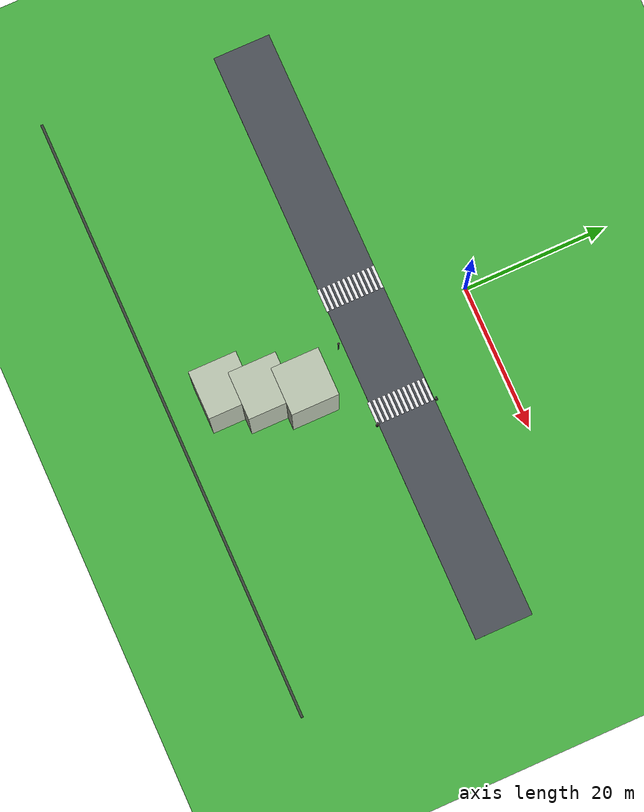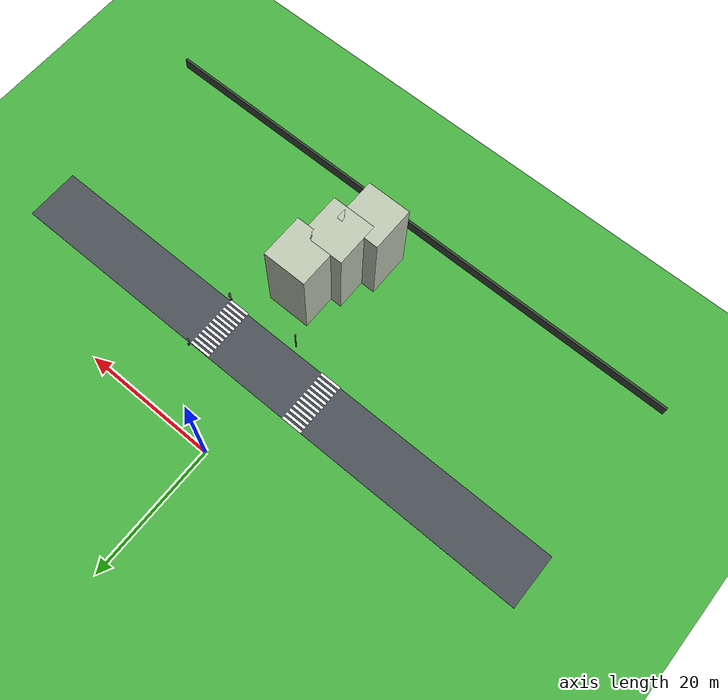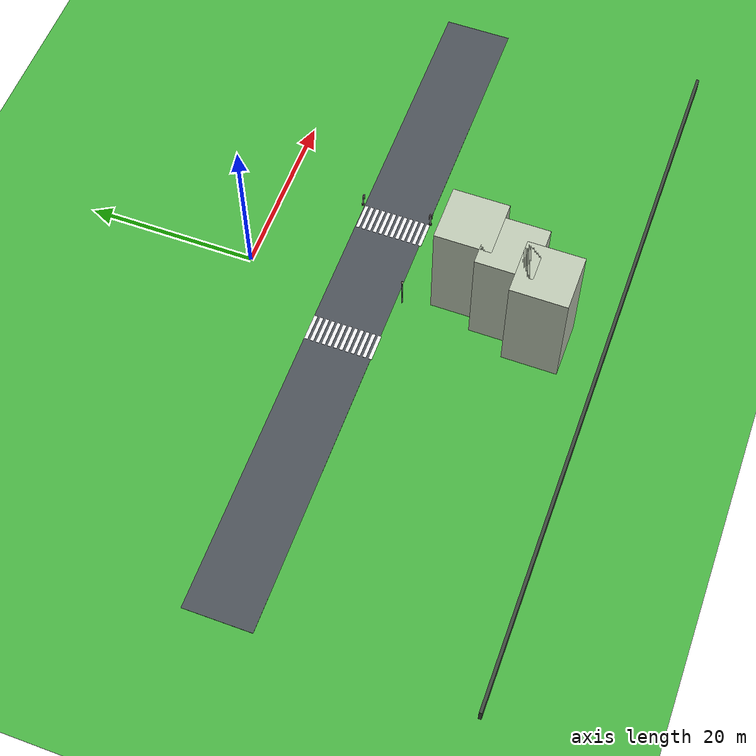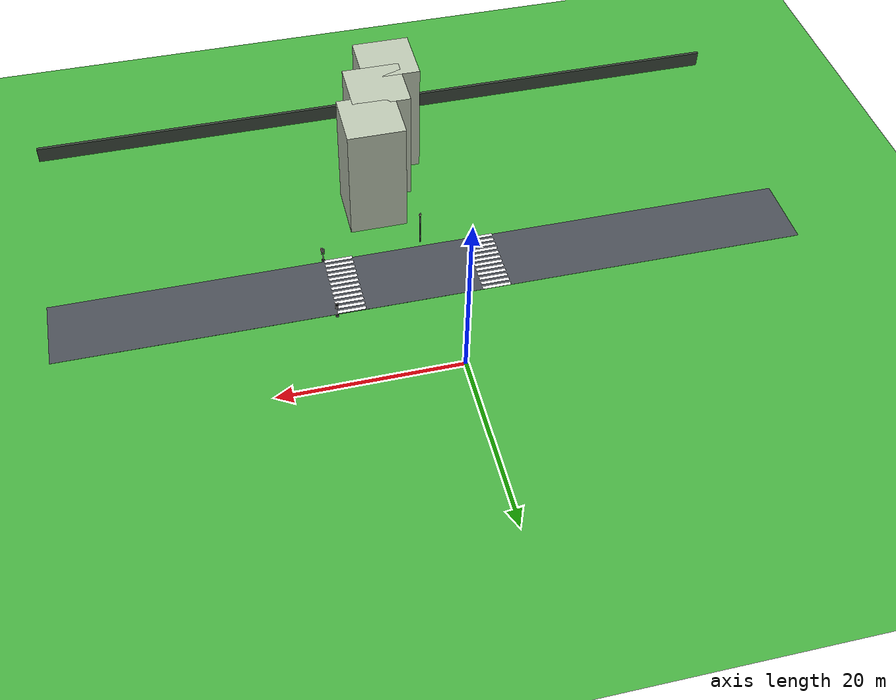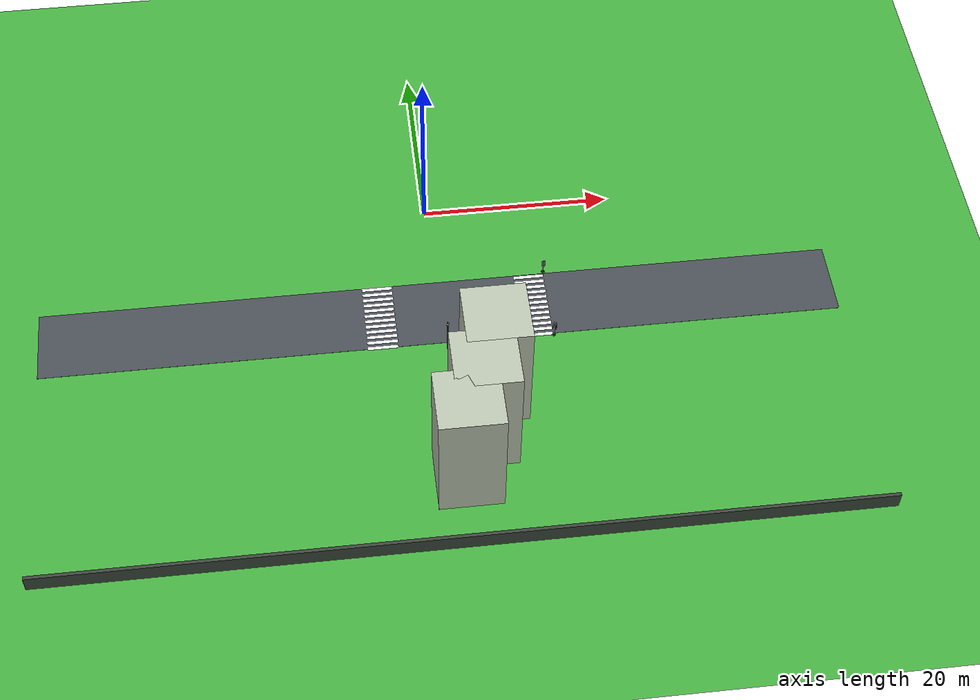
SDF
<sdf version="1.10">
 <world name="city_second">
  <model name="ground_plane">
   <static>true</static>
   <link name="link">
    <collision name="collision">
     <geometry><plane><normal>0 0 1</normal><size>300 300</size></plane></geometry>
    </collision>
    <visual name="visual">
     <geometry><plane><normal>0 0 1</normal><size>300 300</size></plane></geometry>
     <material>
      <ambient>0.280000001 0.689999998 0.25999999 1</ambient>
      <diffuse>0.280000001 0.689999998 0.25999999 1</diffuse>
      <specular>0.0299999993 0.0299999993 0.0299999993 1</specular>
     </material>
    </visual>
    <inertial>
     <mass>1</mass>
     <inertia><ixx>1</ixx><ixy>0</ixy><ixz>0</ixz><iyy>1</iyy><iyz>0</iyz><izz>1</izz></inertia>
    </inertial>
   </link>
  </model>
  <model name="house_1_2">
   <static>true</static>
   <pose>4.5999999999999996 -24.800000000000001 7 0 0 0</pose>
   <link name="link">
    <collision name="collision"><geometry><box><size>6.5 6.5 14</size></box></geometry></collision>
    <visual name="visual">
     <geometry><box><size>6.5 6.5 14</size></box></geometry>
     <material>
      <ambient>0.730000019 0.769999981 0.689999998 1</ambient>
      <diffuse>0.730000019 0.769999981 0.689999998 1</diffuse>
      <specular>0.0299999993 0.0299999993 0.0299999993 1</specular>
     </material>
    </visual>
    <inertial>
     <mass>1</mass>
     <inertia><ixx>1</ixx><ixy>0</ixy><ixz>0</ixz><iyy>1</iyy><iyz>0</iyz><izz>1</izz></inertia>
    </inertial>
   </link>
  </model>
  <model name="fence_south">
   <static>true</static>
   <pose>0 -42 0.94999999999999996 0 0 0</pose>
   <link name="link">
    <collision name="collision">
     <geometry><box><size>84.5 0.34999999999999998 1.8999999999999999</size></box></geometry>
    </collision>
    <visual name="visual">
     <geometry><box><size>84.5 0.34999999999999998 1.8999999999999999</size></box></geometry>
     <material>
      <ambient>0.230000004 0.270000011 0.230000004 1</ambient>
      <diffuse>0.230000004 0.270000011 0.230000004 1</diffuse>
      <specular>0.0299999993 0.0299999993 0.0299999993 1</specular>
     </material>
    </visual>
    <inertial>
     <mass>1</mass>
     <inertia><ixx>1</ixx><ixy>0</ixy><ixz>0</ixz><iyy>1</iyy><iyz>0</iyz><izz>1</izz></inertia>
    </inertial>
   </link>
  </model>
  <model name="house_1_2_1">
   <static>true</static>
   <pose>2.9261599999999999 -29.924299999999999 7 0 0 0</pose>
   <link name="link">
    <collision name="collision"><geometry><box><size>6.5 6.5 14</size></box></geometry></collision>
    <visual name="visual">
     <geometry><box><size>6.5 6.5 14</size></box></geometry>
     <material>
      <ambient>0.730000019 0.769999981 0.689999998 1</ambient>
      <diffuse>0.730000019 0.769999981 0.689999998 1</diffuse>
      <specular>0.0299999993 0.0299999993 0.0299999993 1</specular>
     </material>
    </visual>
    <inertial>
     <mass>1</mass>
     <inertia><ixx>1</ixx><ixy>0</ixy><ixz>0</ixz><iyy>1</iyy><iyz>0</iyz><izz>1</izz></inertia>
    </inertial>
   </link>
  </model>
  <model name="house_1_2_2">
   <static>true</static>
   <pose>0.84303399999999995 -34.430599999999998 7 0 0 0</pose>
   <link name="link">
    <collision name="collision"><geometry><box><size>6.5 6.5 14</size></box></geometry></collision>
    <visual name="visual">
     <geometry><box><size>6.5 6.5 14</size></box></geometry>
     <material>
      <ambient>0.730000019 0.769999981 0.689999998 1</ambient>
      <diffuse>0.730000019 0.769999981 0.689999998 1</diffuse>
      <specular>0.0299999993 0.0299999993 0.0299999993 1</specular>
     </material>
    </visual>
    <inertial>
     <mass>1</mass>
     <inertia><ixx>1</ixx><ixy>0</ixy><ixz>0</ixz><iyy>1</iyy><iyz>0</iyz><izz>1</izz></inertia>
    </inertial>
   </link>
  </model>
  <model name="crosswalk_v_2_1_east_5_3">
   <static>true</static>
   <pose>10.1084 -13.8094 0.017000000000000001 0 0 0</pose>
   <link name="stripe_1">
    <collision name="collision">
     <geometry><box><size>3.2000000000000002 0.41999999999999998 0.01</size></box></geometry>
    </collision>
    <visual name="visual">
     <geometry><box><size>3.2000000000000002 0.41999999999999998 0.01</size></box></geometry>
     <material>
      <ambient>0.920000017 0.920000017 0.930000007 1</ambient>
      <diffuse>0.920000017 0.920000017 0.930000007 1</diffuse>
      <specular>0.0299999993 0.0299999993 0.0299999993 1</specular>
     </material>
    </visual>
    <pose>0 -3.8500000000000001 0 0 0 0</pose>
    <inertial>
     <mass>1</mass>
     <inertia><ixx>1</ixx><ixy>0</ixy><ixz>0</ixz><iyy>1</iyy><iyz>0</iyz><izz>1</izz></inertia>
    </inertial>
   </link>
   <link name="stripe_2">
    <collision name="collision">
     <geometry><box><size>3.2000000000000002 0.41999999999999998 0.01</size></box></geometry>
    </collision>
    <visual name="visual">
     <geometry><box><size>3.2000000000000002 0.41999999999999998 0.01</size></box></geometry>
     <material>
      <ambient>0.920000017 0.920000017 0.930000007 1</ambient>
      <diffuse>0.920000017 0.920000017 0.930000007 1</diffuse>
      <specular>0.0299999993 0.0299999993 0.0299999993 1</specular>
     </material>
    </visual>
    <pose>0 -3.1499999999999999 0 0 0 0</pose>
    <inertial>
     <mass>1</mass>
     <inertia><ixx>1</ixx><ixy>0</ixy><ixz>0</ixz><iyy>1</iyy><iyz>0</iyz><izz>1</izz></inertia>
    </inertial>
   </link>
   <link name="stripe_3">
    <collision name="collision">
     <geometry><box><size>3.2000000000000002 0.41999999999999998 0.01</size></box></geometry>
    </collision>
    <visual name="visual">
     <geometry><box><size>3.2000000000000002 0.41999999999999998 0.01</size></box></geometry>
     <material>
      <ambient>0.920000017 0.920000017 0.930000007 1</ambient>
      <diffuse>0.920000017 0.920000017 0.930000007 1</diffuse>
      <specular>0.0299999993 0.0299999993 0.0299999993 1</specular>
     </material>
    </visual>
    <pose>0 -2.4500000000000002 0 0 0 0</pose>
    <inertial>
     <mass>1</mass>
     <inertia><ixx>1</ixx><ixy>0</ixy><ixz>0</ixz><iyy>1</iyy><iyz>0</iyz><izz>1</izz></inertia>
    </inertial>
   </link>
   <link name="stripe_4">
    <collision name="collision">
     <geometry><box><size>3.2000000000000002 0.41999999999999998 0.01</size></box></geometry>
    </collision>
    <visual name="visual">
     <geometry><box><size>3.2000000000000002 0.41999999999999998 0.01</size></box></geometry>
     <material>
      <ambient>0.920000017 0.920000017 0.930000007 1</ambient>
      <diffuse>0.920000017 0.920000017 0.930000007 1</diffuse>
      <specular>0.0299999993 0.0299999993 0.0299999993 1</specular>
     </material>
    </visual>
    <pose>0 -1.75 0 0 0 0</pose>
    <inertial>
     <mass>1</mass>
     <inertia><ixx>1</ixx><ixy>0</ixy><ixz>0</ixz><iyy>1</iyy><iyz>0</iyz><izz>1</izz></inertia>
    </inertial>
   </link>
   <link name="stripe_5">
    <collision name="collision">
     <geometry><box><size>3.2000000000000002 0.41999999999999998 0.01</size></box></geometry>
    </collision>
    <visual name="visual">
     <geometry><box><size>3.2000000000000002 0.41999999999999998 0.01</size></box></geometry>
     <material>
      <ambient>0.920000017 0.920000017 0.930000007 1</ambient>
      <diffuse>0.920000017 0.920000017 0.930000007 1</diffuse>
      <specular>0.0299999993 0.0299999993 0.0299999993 1</specular>
     </material>
    </visual>
    <pose>0 -1.05 0 0 0 0</pose>
    <inertial>
     <mass>1</mass>
     <inertia><ixx>1</ixx><ixy>0</ixy><ixz>0</ixz><iyy>1</iyy><iyz>0</iyz><izz>1</izz></inertia>
    </inertial>
   </link>
   <link name="stripe_6">
    <collision name="collision">
     <geometry><box><size>3.2000000000000002 0.41999999999999998 0.01</size></box></geometry>
    </collision>
    <visual name="visual">
     <geometry><box><size>3.2000000000000002 0.41999999999999998 0.01</size></box></geometry>
     <material>
      <ambient>0.920000017 0.920000017 0.930000007 1</ambient>
      <diffuse>0.920000017 0.920000017 0.930000007 1</diffuse>
      <specular>0.0299999993 0.0299999993 0.0299999993 1</specular>
     </material>
    </visual>
    <pose>0 -0.34999999999999998 0 0 0 0</pose>
    <inertial>
     <mass>1</mass>
     <inertia><ixx>1</ixx><ixy>0</ixy><ixz>0</ixz><iyy>1</iyy><iyz>0</iyz><izz>1</izz></inertia>
    </inertial>
   </link>
   <link name="stripe_7">
    <collision name="collision">
     <geometry><box><size>3.2000000000000002 0.41999999999999998 0.01</size></box></geometry>
    </collision>
    <visual name="visual">
     <geometry><box><size>3.2000000000000002 0.41999999999999998 0.01</size></box></geometry>
     <material>
      <ambient>0.920000017 0.920000017 0.930000007 1</ambient>
      <diffuse>0.920000017 0.920000017 0.930000007 1</diffuse>
      <specular>0.0299999993 0.0299999993 0.0299999993 1</specular>
     </material>
    </visual>
    <pose>0 0.34999999999999998 0 0 0 0</pose>
    <inertial>
     <mass>1</mass>
     <inertia><ixx>1</ixx><ixy>0</ixy><ixz>0</ixz><iyy>1</iyy><iyz>0</iyz><izz>1</izz></inertia>
    </inertial>
   </link>
   <link name="stripe_8">
    <collision name="collision">
     <geometry><box><size>3.2000000000000002 0.41999999999999998 0.01</size></box></geometry>
    </collision>
    <visual name="visual">
     <geometry><box><size>3.2000000000000002 0.41999999999999998 0.01</size></box></geometry>
     <material>
      <ambient>0.920000017 0.920000017 0.930000007 1</ambient>
      <diffuse>0.920000017 0.920000017 0.930000007 1</diffuse>
      <specular>0.0299999993 0.0299999993 0.0299999993 1</specular>
     </material>
    </visual>
    <pose>0 1.05 0 0 0 0</pose>
    <inertial>
     <mass>1</mass>
     <inertia><ixx>1</ixx><ixy>0</ixy><ixz>0</ixz><iyy>1</iyy><iyz>0</iyz><izz>1</izz></inertia>
    </inertial>
   </link>
   <link name="stripe_9">
    <collision name="collision">
     <geometry><box><size>3.2000000000000002 0.41999999999999998 0.01</size></box></geometry>
    </collision>
    <visual name="visual">
     <geometry><box><size>3.2000000000000002 0.41999999999999998 0.01</size></box></geometry>
     <material>
      <ambient>0.920000017 0.920000017 0.930000007 1</ambient>
      <diffuse>0.920000017 0.920000017 0.930000007 1</diffuse>
      <specular>0.0299999993 0.0299999993 0.0299999993 1</specular>
     </material>
    </visual>
    <pose>0 1.75 0 0 0 0</pose>
    <inertial>
     <mass>1</mass>
     <inertia><ixx>1</ixx><ixy>0</ixy><ixz>0</ixz><iyy>1</iyy><iyz>0</iyz><izz>1</izz></inertia>
    </inertial>
   </link>
   <link name="stripe_10">
    <collision name="collision">
     <geometry><box><size>3.2000000000000002 0.41999999999999998 0.01</size></box></geometry>
    </collision>
    <visual name="visual">
     <geometry><box><size>3.2000000000000002 0.41999999999999998 0.01</size></box></geometry>
     <material>
      <ambient>0.920000017 0.920000017 0.930000007 1</ambient>
      <diffuse>0.920000017 0.920000017 0.930000007 1</diffuse>
      <specular>0.0299999993 0.0299999993 0.0299999993 1</specular>
     </material>
    </visual>
    <pose>0 2.4500000000000002 0 0 0 0</pose>
    <inertial>
     <mass>1</mass>
     <inertia><ixx>1</ixx><ixy>0</ixy><ixz>0</ixz><iyy>1</iyy><iyz>0</iyz><izz>1</izz></inertia>
    </inertial>
   </link>
   <link name="stripe_11">
    <collision name="collision">
     <geometry><box><size>3.2000000000000002 0.41999999999999998 0.01</size></box></geometry>
    </collision>
    <visual name="visual">
     <geometry><box><size>3.2000000000000002 0.41999999999999998 0.01</size></box></geometry>
     <material>
      <ambient>0.920000017 0.920000017 0.930000007 1</ambient>
      <diffuse>0.920000017 0.920000017 0.930000007 1</diffuse>
      <specular>0.0299999993 0.0299999993 0.0299999993 1</specular>
     </material>
    </visual>
    <pose>0 3.1499999999999999 0 0 0 0</pose>
    <inertial>
     <mass>1</mass>
     <inertia><ixx>1</ixx><ixy>0</ixy><ixz>0</ixz><iyy>1</iyy><iyz>0</iyz><izz>1</izz></inertia>
    </inertial>
   </link>
   <link name="stripe_12">
    <collision name="collision">
     <geometry><box><size>3.2000000000000002 0.41999999999999998 0.01</size></box></geometry>
    </collision>
    <visual name="visual">
     <geometry><box><size>3.2000000000000002 0.41999999999999998 0.01</size></box></geometry>
     <material>
      <ambient>0.920000017 0.920000017 0.930000007 1</ambient>
      <diffuse>0.920000017 0.920000017 0.930000007 1</diffuse>
      <specular>0.0299999993 0.0299999993 0.0299999993 1</specular>
     </material>
    </visual>
    <pose>0 3.8500000000000001 0 0 0 0</pose>
    <inertial>
     <mass>1</mass>
     <inertia><ixx>1</ixx><ixy>0</ixy><ixz>0</ixz><iyy>1</iyy><iyz>0</iyz><izz>1</izz></inertia>
    </inertial>
   </link>
  </model>
  <model name="crosswalk_v_2_1_east_5_5">
   <static>true</static>
   <pose>-6.1313199999999997 -13.727399999999999 0.017000000000000001 0 0 0</pose>
   <link name="stripe_1">
    <collision name="collision">
     <geometry><box><size>3.2000000000000002 0.41999999999999998 0.01</size></box></geometry>
    </collision>
    <visual name="visual">
     <geometry><box><size>3.2000000000000002 0.41999999999999998 0.01</size></box></geometry>
     <material>
      <ambient>0.920000017 0.920000017 0.930000007 1</ambient>
      <diffuse>0.920000017 0.920000017 0.930000007 1</diffuse>
      <specular>0.0299999993 0.0299999993 0.0299999993 1</specular>
     </material>
    </visual>
    <pose>0 -3.8500000000000001 0 0 0 0</pose>
    <inertial>
     <mass>1</mass>
     <inertia><ixx>1</ixx><ixy>0</ixy><ixz>0</ixz><iyy>1</iyy><iyz>0</iyz><izz>1</izz></inertia>
    </inertial>
   </link>
   <link name="stripe_2">
    <collision name="collision">
     <geometry><box><size>3.2000000000000002 0.41999999999999998 0.01</size></box></geometry>
    </collision>
    <visual name="visual">
     <geometry><box><size>3.2000000000000002 0.41999999999999998 0.01</size></box></geometry>
     <material>
      <ambient>0.920000017 0.920000017 0.930000007 1</ambient>
      <diffuse>0.920000017 0.920000017 0.930000007 1</diffuse>
      <specular>0.0299999993 0.0299999993 0.0299999993 1</specular>
     </material>
    </visual>
    <pose>0 -3.1499999999999999 0 0 0 0</pose>
    <inertial>
     <mass>1</mass>
     <inertia><ixx>1</ixx><ixy>0</ixy><ixz>0</ixz><iyy>1</iyy><iyz>0</iyz><izz>1</izz></inertia>
    </inertial>
   </link>
   <link name="stripe_3">
    <collision name="collision">
     <geometry><box><size>3.2000000000000002 0.41999999999999998 0.01</size></box></geometry>
    </collision>
    <visual name="visual">
     <geometry><box><size>3.2000000000000002 0.41999999999999998 0.01</size></box></geometry>
     <material>
      <ambient>0.920000017 0.920000017 0.930000007 1</ambient>
      <diffuse>0.920000017 0.920000017 0.930000007 1</diffuse>
      <specular>0.0299999993 0.0299999993 0.0299999993 1</specular>
     </material>
    </visual>
    <pose>0 -2.4500000000000002 0 0 0 0</pose>
    <inertial>
     <mass>1</mass>
     <inertia><ixx>1</ixx><ixy>0</ixy><ixz>0</ixz><iyy>1</iyy><iyz>0</iyz><izz>1</izz></inertia>
    </inertial>
   </link>
   <link name="stripe_4">
    <collision name="collision">
     <geometry><box><size>3.2000000000000002 0.41999999999999998 0.01</size></box></geometry>
    </collision>
    <visual name="visual">
     <geometry><box><size>3.2000000000000002 0.41999999999999998 0.01</size></box></geometry>
     <material>
      <ambient>0.920000017 0.920000017 0.930000007 1</ambient>
      <diffuse>0.920000017 0.920000017 0.930000007 1</diffuse>
      <specular>0.0299999993 0.0299999993 0.0299999993 1</specular>
     </material>
    </visual>
    <pose>0 -1.75 0 0 0 0</pose>
    <inertial>
     <mass>1</mass>
     <inertia><ixx>1</ixx><ixy>0</ixy><ixz>0</ixz><iyy>1</iyy><iyz>0</iyz><izz>1</izz></inertia>
    </inertial>
   </link>
   <link name="stripe_5">
    <collision name="collision">
     <geometry><box><size>3.2000000000000002 0.41999999999999998 0.01</size></box></geometry>
    </collision>
    <visual name="visual">
     <geometry><box><size>3.2000000000000002 0.41999999999999998 0.01</size></box></geometry>
     <material>
      <ambient>0.920000017 0.920000017 0.930000007 1</ambient>
      <diffuse>0.920000017 0.920000017 0.930000007 1</diffuse>
      <specular>0.0299999993 0.0299999993 0.0299999993 1</specular>
     </material>
    </visual>
    <pose>0 -1.05 0 0 0 0</pose>
    <inertial>
     <mass>1</mass>
     <inertia><ixx>1</ixx><ixy>0</ixy><ixz>0</ixz><iyy>1</iyy><iyz>0</iyz><izz>1</izz></inertia>
    </inertial>
   </link>
   <link name="stripe_6">
    <collision name="collision">
     <geometry><box><size>3.2000000000000002 0.41999999999999998 0.01</size></box></geometry>
    </collision>
    <visual name="visual">
     <geometry><box><size>3.2000000000000002 0.41999999999999998 0.01</size></box></geometry>
     <material>
      <ambient>0.920000017 0.920000017 0.930000007 1</ambient>
      <diffuse>0.920000017 0.920000017 0.930000007 1</diffuse>
      <specular>0.0299999993 0.0299999993 0.0299999993 1</specular>
     </material>
    </visual>
    <pose>0 -0.34999999999999998 0 0 0 0</pose>
    <inertial>
     <mass>1</mass>
     <inertia><ixx>1</ixx><ixy>0</ixy><ixz>0</ixz><iyy>1</iyy><iyz>0</iyz><izz>1</izz></inertia>
    </inertial>
   </link>
   <link name="stripe_7">
    <collision name="collision">
     <geometry><box><size>3.2000000000000002 0.41999999999999998 0.01</size></box></geometry>
    </collision>
    <visual name="visual">
     <geometry><box><size>3.2000000000000002 0.41999999999999998 0.01</size></box></geometry>
     <material>
      <ambient>0.920000017 0.920000017 0.930000007 1</ambient>
      <diffuse>0.920000017 0.920000017 0.930000007 1</diffuse>
      <specular>0.0299999993 0.0299999993 0.0299999993 1</specular>
     </material>
    </visual>
    <pose>0 0.34999999999999998 0 0 0 0</pose>
    <inertial>
     <mass>1</mass>
     <inertia><ixx>1</ixx><ixy>0</ixy><ixz>0</ixz><iyy>1</iyy><iyz>0</iyz><izz>1</izz></inertia>
    </inertial>
   </link>
   <link name="stripe_8">
    <collision name="collision">
     <geometry><box><size>3.2000000000000002 0.41999999999999998 0.01</size></box></geometry>
    </collision>
    <visual name="visual">
     <geometry><box><size>3.2000000000000002 0.41999999999999998 0.01</size></box></geometry>
     <material>
      <ambient>0.920000017 0.920000017 0.930000007 1</ambient>
      <diffuse>0.920000017 0.920000017 0.930000007 1</diffuse>
      <specular>0.0299999993 0.0299999993 0.0299999993 1</specular>
     </material>
    </visual>
    <pose>0 1.05 0 0 0 0</pose>
    <inertial>
     <mass>1</mass>
     <inertia><ixx>1</ixx><ixy>0</ixy><ixz>0</ixz><iyy>1</iyy><iyz>0</iyz><izz>1</izz></inertia>
    </inertial>
   </link>
   <link name="stripe_9">
    <collision name="collision">
     <geometry><box><size>3.2000000000000002 0.41999999999999998 0.01</size></box></geometry>
    </collision>
    <visual name="visual">
     <geometry><box><size>3.2000000000000002 0.41999999999999998 0.01</size></box></geometry>
     <material>
      <ambient>0.920000017 0.920000017 0.930000007 1</ambient>
      <diffuse>0.920000017 0.920000017 0.930000007 1</diffuse>
      <specular>0.0299999993 0.0299999993 0.0299999993 1</specular>
     </material>
    </visual>
    <pose>0 1.75 0 0 0 0</pose>
    <inertial>
     <mass>1</mass>
     <inertia><ixx>1</ixx><ixy>0</ixy><ixz>0</ixz><iyy>1</iyy><iyz>0</iyz><izz>1</izz></inertia>
    </inertial>
   </link>
   <link name="stripe_10">
    <collision name="collision">
     <geometry><box><size>3.2000000000000002 0.41999999999999998 0.01</size></box></geometry>
    </collision>
    <visual name="visual">
     <geometry><box><size>3.2000000000000002 0.41999999999999998 0.01</size></box></geometry>
     <material>
      <ambient>0.920000017 0.920000017 0.930000007 1</ambient>
      <diffuse>0.920000017 0.920000017 0.930000007 1</diffuse>
      <specular>0.0299999993 0.0299999993 0.0299999993 1</specular>
     </material>
    </visual>
    <pose>0 2.4500000000000002 0 0 0 0</pose>
    <inertial>
     <mass>1</mass>
     <inertia><ixx>1</ixx><ixy>0</ixy><ixz>0</ixz><iyy>1</iyy><iyz>0</iyz><izz>1</izz></inertia>
    </inertial>
   </link>
   <link name="stripe_11">
    <collision name="collision">
     <geometry><box><size>3.2000000000000002 0.41999999999999998 0.01</size></box></geometry>
    </collision>
    <visual name="visual">
     <geometry><box><size>3.2000000000000002 0.41999999999999998 0.01</size></box></geometry>
     <material>
      <ambient>0.920000017 0.920000017 0.930000007 1</ambient>
      <diffuse>0.920000017 0.920000017 0.930000007 1</diffuse>
      <specular>0.0299999993 0.0299999993 0.0299999993 1</specular>
     </material>
    </visual>
    <pose>0 3.1499999999999999 0 0 0 0</pose>
    <inertial>
     <mass>1</mass>
     <inertia><ixx>1</ixx><ixy>0</ixy><ixz>0</ixz><iyy>1</iyy><iyz>0</iyz><izz>1</izz></inertia>
    </inertial>
   </link>
   <link name="stripe_12">
    <collision name="collision">
     <geometry><box><size>3.2000000000000002 0.41999999999999998 0.01</size></box></geometry>
    </collision>
    <visual name="visual">
     <geometry><box><size>3.2000000000000002 0.41999999999999998 0.01</size></box></geometry>
     <material>
      <ambient>0.920000017 0.920000017 0.930000007 1</ambient>
      <diffuse>0.920000017 0.920000017 0.930000007 1</diffuse>
      <specular>0.0299999993 0.0299999993 0.0299999993 1</specular>
     </material>
    </visual>
    <pose>0 3.8500000000000001 0 0 0 0</pose>
    <inertial>
     <mass>1</mass>
     <inertia><ixx>1</ixx><ixy>0</ixy><ixz>0</ixz><iyy>1</iyy><iyz>0</iyz><izz>1</izz></inertia>
    </inertial>
   </link>
  </model>
  <model name="road_h_2_1">
   <static>true</static>
   <pose>0.20479900000000001 -13.667999999999999 0.01 0 0 0</pose>
   <link name="link">
    <collision name="collision"><geometry><box><size>84 8 0.02</size></box></geometry></collision>
    <visual name="visual">
     <geometry><box><size>84 8 0.02</size></box></geometry>
     <material>
      <ambient>0.289999992 0.310000002 0.340000004 1</ambient>
      <diffuse>0.289999992 0.310000002 0.340000004 1</diffuse>
      <specular>0.0299999993 0.0299999993 0.0299999993 1</specular>
     </material>
    </visual>
    <inertial>
     <mass>1</mass>
     <inertia><ixx>1</ixx><ixy>0</ixy><ixz>0</ixz><iyy>1</iyy><iyz>0</iyz><izz>1</izz></inertia>
    </inertial>
   </link>
  </model>
  <model name="lamp_1_2_5">
   <static>true</static>
   <pose>0.52294700000000005 -18.399799999999999 2.2000000000000002 0 0 0</pose>
   <link name="link">
    <collision name="collision">
     <geometry>
      <cylinder><radius>0.080000000000000002</radius><length>4.4000000000000004</length></cylinder>
     </geometry>
    </collision>
    <visual name="pole">
     <geometry>
      <cylinder><radius>0.080000000000000002</radius><length>4.4000000000000004</length></cylinder>
     </geometry>
     <material>
      <ambient>0.349999994 0.360000014 0.379999995 1</ambient>
      <diffuse>0.349999994 0.360000014 0.379999995 1</diffuse>
      <specular>0.0299999993 0.0299999993 0.0299999993 1</specular>
     </material>
    </visual>
    <visual name="lamp_head">
     <pose>0 0 2 0 0 0</pose>
     <geometry><sphere><radius>0.14000000000000001</radius></sphere></geometry>
     <material>
      <ambient>0.959999979 0.939999998 0.779999971 1</ambient>
      <diffuse>0.959999979 0.939999998 0.779999971 1</diffuse>
      <specular>0.0299999993 0.0299999993 0.0299999993 1</specular>
     </material>
    </visual>
    <inertial>
     <mass>1</mass>
     <inertia><ixx>1</ixx><ixy>0</ixy><ixz>0</ixz><iyy>1</iyy><iyz>0</iyz><izz>1</izz></inertia>
    </inertial>
   </link>
  </model>
  <model name="simple_traffic_light_red_east_3">
   <static>true</static>
   <pose>11.772916838391152 -17.894358570880065 -6.9388939039072284e-18 0 0 -1.5707999672671704</pose>
   <link name="base">
    <pose>0 0 0.040000000000000001 0 0 0</pose>
    <collision name="collision">
     <geometry>
      <cylinder><radius>0.17999999999999999</radius><length>0.080000000000000002</length></cylinder>
     </geometry>
    </collision>
    <visual name="visual">
     <geometry>
      <cylinder><radius>0.17999999999999999</radius><length>0.080000000000000002</length></cylinder>
     </geometry>
     <material>
      <ambient>0.0799999982 0.0799999982 0.0799999982 1</ambient>
      <diffuse>0.0799999982 0.0799999982 0.0799999982 1</diffuse>
      <specular>0.150000006 0.150000006 0.150000006 1</specular>
      <emissive>0 0 0 1</emissive>
     </material>
    </visual>
    <inertial>
     <mass>1</mass>
     <inertia><ixx>1</ixx><ixy>0</ixy><ixz>0</ixz><iyy>1</iyy><iyz>0</iyz><izz>1</izz></inertia>
    </inertial>
   </link>
   <link name="pole">
    <pose>-7.1054273576010019e-15 7.1054273576010019e-15 0.80000000000000004 0 0 0</pose>
    <collision name="collision">
     <geometry>
      <cylinder><radius>0.044999999999999998</radius><length>1.6000000000000001</length></cylinder>
     </geometry>
    </collision>
    <visual name="visual">
     <geometry>
      <cylinder><radius>0.044999999999999998</radius><length>1.6000000000000001</length></cylinder>
     </geometry>
     <material>
      <ambient>0.0799999982 0.0799999982 0.0799999982 1</ambient>
      <diffuse>0.0799999982 0.0799999982 0.0799999982 1</diffuse>
      <specular>0.150000006 0.150000006 0.150000006 1</specular>
      <emissive>0 0 0 1</emissive>
     </material>
    </visual>
    <inertial>
     <mass>1</mass>
     <inertia><ixx>1</ixx><ixy>0</ixy><ixz>0</ixz><iyy>1</iyy><iyz>0</iyz><izz>1</izz></inertia>
    </inertial>
   </link>
   <link name="signal_box">
    <pose>7.1054273576010019e-15 0.090000000000003411 1.5500000000000003 0 0 0</pose>
    <collision name="collision">
     <geometry><box><size>0.34000000000000002 0.16 0.71999999999999997</size></box></geometry>
    </collision>
    <visual name="visual">
     <geometry><box><size>0.34000000000000002 0.16 0.71999999999999997</size></box></geometry>
     <material>
      <ambient>0.0199999996 0.0199999996 0.0199999996 1</ambient>
      <diffuse>0.0199999996 0.0199999996 0.0199999996 1</diffuse>
      <specular>0.150000006 0.150000006 0.150000006 1</specular>
      <emissive>0 0 0 1</emissive>
     </material>
    </visual>
    <inertial>
     <mass>1</mass>
     <inertia><ixx>1</ixx><ixy>0</ixy><ixz>0</ixz><iyy>1</iyy><iyz>0</iyz><izz>1</izz></inertia>
    </inertial>
   </link>
   <link name="red_lens">
    <pose>-7.1054273576010019e-15 0.18100000000000449 1.78 1.5707963267999998 -8.0126081257495458e-28 3.1401849173675498e-16</pose>
    <collision name="collision">
     <geometry><cylinder><radius>0.105</radius><length>0.035000000000000003</length></cylinder></geometry>
    </collision>
    <visual name="visual">
     <geometry><cylinder><radius>0.105</radius><length>0.035000000000000003</length></cylinder></geometry>
     <material>
      <ambient>1 0.0199999996 0.0199999996 1</ambient>
      <diffuse>1 0.0199999996 0.0199999996 1</diffuse>
      <specular>0.150000006 0.150000006 0.150000006 1</specular>
      <emissive>1 0.0199999996 0.0199999996 1</emissive>
     </material>
    </visual>
    <inertial>
     <mass>1</mass>
     <inertia><ixx>1</ixx><ixy>0</ixy><ixz>0</ixz><iyy>1</iyy><iyz>0</iyz><izz>1</izz></inertia>
    </inertial>
   </link>
   <link name="yellow_lens">
    <pose>-7.1054273576010019e-15 0.18200000000000216 1.5500000000000003 1.5707963267999998 -8.0126081257495458e-28 3.1401849173675498e-16</pose>
    <collision name="collision">
     <geometry>
      <cylinder><radius>0.095000000000000001</radius><length>0.035000000000000003</length></cylinder>
     </geometry>
    </collision>
    <visual name="visual">
     <geometry>
      <cylinder><radius>0.095000000000000001</radius><length>0.035000000000000003</length></cylinder>
     </geometry>
     <material>
      <ambient>0.119999997 0.100000001 0.0199999996 1</ambient>
      <diffuse>0.119999997 0.100000001 0.0199999996 1</diffuse>
      <specular>0.150000006 0.150000006 0.150000006 1</specular>
      <emissive>0 0 0 1</emissive>
     </material>
    </visual>
    <inertial>
     <mass>1</mass>
     <inertia><ixx>1</ixx><ixy>0</ixy><ixz>0</ixz><iyy>1</iyy><iyz>0</iyz><izz>1</izz></inertia>
    </inertial>
   </link>
   <link name="green_lens">
    <pose>0 0.18300000000000693 1.3199999999999998 1.5707963267999998 -8.0126081257495458e-28 3.1401849173675498e-16</pose>
    <collision name="collision">
     <geometry><cylinder><radius>0.105</radius><length>0.035000000000000003</length></cylinder></geometry>
    </collision>
    <visual name="visual">
     <geometry><cylinder><radius>0.105</radius><length>0.035000000000000003</length></cylinder></geometry>
     <material>
      <ambient>0.0799999982 0.0799999982 0.0799999982 1</ambient>
      <diffuse>0.0799999982 0.0799999982 0.0799999982 1</diffuse>
      <specular>0.150000006 0.150000006 0.150000006 1</specular>
      <emissive>0 0 0 1</emissive>
     </material>
    </visual>
    <inertial>
     <mass>1</mass>
     <inertia><ixx>1</ixx><ixy>0</ixy><ixz>0</ixz><iyy>1</iyy><iyz>0</iyz><izz>1</izz></inertia>
    </inertial>
   </link>
   <light name="red_glow" type="point">
    <pose>0 0.28 1.78 0 0 0</pose>
    <diffuse>1 0.02 0.02 1</diffuse>
    <specular>1 0.02 0.02 1</specular>
    <attenuation>
     <range>3.0</range>
     <constant>0.8</constant>
     <linear>0.15</linear>
     <quadratic>0.02</quadratic>
    </attenuation>
    <cast_shadows>false</cast_shadows>
   </light>
  </model>
  <model name="simple_traffic_light_green_north_1_2">
   <static>true</static>
   <pose>11.777170378205799 -17.868153238986416 0 0 0 0</pose>
   <link name="base">
    <pose>0 0 0.040000000000000001 0 0 0</pose>
    <collision name="collision">
     <geometry>
      <cylinder><radius>0.17999999999999999</radius><length>0.080000000000000002</length></cylinder>
     </geometry>
    </collision>
    <visual name="visual">
     <geometry>
      <cylinder><radius>0.17999999999999999</radius><length>0.080000000000000002</length></cylinder>
     </geometry>
     <material>
      <ambient>0.0799999982 0.0799999982 0.0799999982 1</ambient>
      <diffuse>0.0799999982 0.0799999982 0.0799999982 1</diffuse>
      <specular>0.150000006 0.150000006 0.150000006 1</specular>
      <emissive>0 0 0 1</emissive>
     </material>
    </visual>
   </link>
   <link name="pole">
    <pose>0 0 0.80000000000000004 0 0 0</pose>
    <collision name="collision">
     <geometry>
      <cylinder><radius>0.044999999999999998</radius><length>1.6000000000000001</length></cylinder>
     </geometry>
    </collision>
    <visual name="visual">
     <geometry>
      <cylinder><radius>0.044999999999999998</radius><length>1.6000000000000001</length></cylinder>
     </geometry>
     <material>
      <ambient>0.0799999982 0.0799999982 0.0799999982 1</ambient>
      <diffuse>0.0799999982 0.0799999982 0.0799999982 1</diffuse>
      <specular>0.150000006 0.150000006 0.150000006 1</specular>
      <emissive>0 0 0 1</emissive>
     </material>
    </visual>
   </link>
   <link name="signal_box">
    <pose>0 0.089999999999999997 1.55 0 0 0</pose>
    <collision name="collision">
     <geometry><box><size>0.34000000000000002 0.16 0.71999999999999997</size></box></geometry>
    </collision>
    <visual name="visual">
     <geometry><box><size>0.34000000000000002 0.16 0.71999999999999997</size></box></geometry>
     <material>
      <ambient>0.0199999996 0.0199999996 0.0199999996 1</ambient>
      <diffuse>0.0199999996 0.0199999996 0.0199999996 1</diffuse>
      <specular>0.150000006 0.150000006 0.150000006 1</specular>
      <emissive>0 0 0 1</emissive>
     </material>
    </visual>
   </link>
   <link name="red_lens">
    <pose>0 0.18099999999999999 1.78 1.5707963268 0 0</pose>
    <collision name="collision">
     <geometry><cylinder><radius>0.105</radius><length>0.035000000000000003</length></cylinder></geometry>
    </collision>
    <visual name="visual">
     <geometry><cylinder><radius>0.105</radius><length>0.035000000000000003</length></cylinder></geometry>
     <material>
      <ambient>0.0799999982 0.0799999982 0.0799999982 1</ambient>
      <diffuse>0.0799999982 0.0799999982 0.0799999982 1</diffuse>
      <specular>0.150000006 0.150000006 0.150000006 1</specular>
      <emissive>0 0 0 1</emissive>
     </material>
    </visual>
   </link>
   <link name="yellow_lens">
    <pose>0 0.182 1.55 1.5707963268 0 0</pose>
    <collision name="collision">
     <geometry>
      <cylinder><radius>0.095000000000000001</radius><length>0.035000000000000003</length></cylinder>
     </geometry>
    </collision>
    <visual name="visual">
     <geometry>
      <cylinder><radius>0.095000000000000001</radius><length>0.035000000000000003</length></cylinder>
     </geometry>
     <material>
      <ambient>0.119999997 0.100000001 0.0199999996 1</ambient>
      <diffuse>0.119999997 0.100000001 0.0199999996 1</diffuse>
      <specular>0.150000006 0.150000006 0.150000006 1</specular>
      <emissive>0 0 0 1</emissive>
     </material>
    </visual>
   </link>
   <link name="green_lens">
    <pose>0 0.183 1.3200000000000001 1.5707963268 0 0</pose>
    <collision name="collision">
     <geometry><cylinder><radius>0.105</radius><length>0.035000000000000003</length></cylinder></geometry>
    </collision>
    <visual name="visual">
     <geometry><cylinder><radius>0.105</radius><length>0.035000000000000003</length></cylinder></geometry>
     <material>
      <ambient>0.0199999996 1 0.0199999996 1</ambient>
      <diffuse>0.0199999996 1 0.0199999996 1</diffuse>
      <specular>0.150000006 0.150000006 0.150000006 1</specular>
      <emissive>0.0199999996 1 0.0199999996 1</emissive>
     </material>
    </visual>
   </link>
   <light name="green_glow" type="point">
    <pose>0 0.28 1.32 0 0 0</pose>
    <diffuse>0.02 1 0.02 1</diffuse>
    <specular>0.02 1 0.02 1</specular>
    <attenuation>
     <range>3.0</range>
     <constant>0.8</constant>
     <linear>0.15</linear>
     <quadratic>0.02</quadratic>
    </attenuation>
    <cast_shadows>false</cast_shadows>
   </light>
  </model>
  <model name="simple_traffic_light_green_south_1_3">
   <static>true</static>
   <pose>11.765058665459204 -9.44188907987707 0 0 0 -3.1415900000000754</pose>
   <link name="base">
    <pose>0 0 0.040000000000000001 0 0 0</pose>
    <collision name="collision">
     <geometry>
      <cylinder><radius>0.17999999999999999</radius><length>0.080000000000000002</length></cylinder>
     </geometry>
    </collision>
    <visual name="visual">
     <geometry>
      <cylinder><radius>0.17999999999999999</radius><length>0.080000000000000002</length></cylinder>
     </geometry>
     <material>
      <ambient>0.0799999982 0.0799999982 0.0799999982 1</ambient>
      <diffuse>0.0799999982 0.0799999982 0.0799999982 1</diffuse>
      <specular>0.150000006 0.150000006 0.150000006 1</specular>
      <emissive>0 0 0 1</emissive>
     </material>
    </visual>
   </link>
   <link name="pole">
    <pose>0 0 0.80000000000000004 0 0 0</pose>
    <collision name="collision">
     <geometry>
      <cylinder><radius>0.044999999999999998</radius><length>1.6000000000000001</length></cylinder>
     </geometry>
    </collision>
    <visual name="visual">
     <geometry>
      <cylinder><radius>0.044999999999999998</radius><length>1.6000000000000001</length></cylinder>
     </geometry>
     <material>
      <ambient>0.0799999982 0.0799999982 0.0799999982 1</ambient>
      <diffuse>0.0799999982 0.0799999982 0.0799999982 1</diffuse>
      <specular>0.150000006 0.150000006 0.150000006 1</specular>
      <emissive>0 0 0 1</emissive>
     </material>
    </visual>
   </link>
   <link name="signal_box">
    <pose>0 0.089999999999999997 1.55 0 0 0</pose>
    <collision name="collision">
     <geometry><box><size>0.34000000000000002 0.16 0.71999999999999997</size></box></geometry>
    </collision>
    <visual name="visual">
     <geometry><box><size>0.34000000000000002 0.16 0.71999999999999997</size></box></geometry>
     <material>
      <ambient>0.0199999996 0.0199999996 0.0199999996 1</ambient>
      <diffuse>0.0199999996 0.0199999996 0.0199999996 1</diffuse>
      <specular>0.150000006 0.150000006 0.150000006 1</specular>
      <emissive>0 0 0 1</emissive>
     </material>
    </visual>
   </link>
   <link name="red_lens">
    <pose>0 0.18099999999999999 1.78 1.5707963268 0 0</pose>
    <collision name="collision">
     <geometry><cylinder><radius>0.105</radius><length>0.035000000000000003</length></cylinder></geometry>
    </collision>
    <visual name="visual">
     <geometry><cylinder><radius>0.105</radius><length>0.035000000000000003</length></cylinder></geometry>
     <material>
      <ambient>0.0799999982 0.0799999982 0.0799999982 1</ambient>
      <diffuse>0.0799999982 0.0799999982 0.0799999982 1</diffuse>
      <specular>0.150000006 0.150000006 0.150000006 1</specular>
      <emissive>0 0 0 1</emissive>
     </material>
    </visual>
   </link>
   <link name="yellow_lens">
    <pose>0 0.182 1.55 1.5707963268 0 0</pose>
    <collision name="collision">
     <geometry>
      <cylinder><radius>0.095000000000000001</radius><length>0.035000000000000003</length></cylinder>
     </geometry>
    </collision>
    <visual name="visual">
     <geometry>
      <cylinder><radius>0.095000000000000001</radius><length>0.035000000000000003</length></cylinder>
     </geometry>
     <material>
      <ambient>0.119999997 0.100000001 0.0199999996 1</ambient>
      <diffuse>0.119999997 0.100000001 0.0199999996 1</diffuse>
      <specular>0.150000006 0.150000006 0.150000006 1</specular>
      <emissive>0 0 0 1</emissive>
     </material>
    </visual>
   </link>
   <link name="green_lens">
    <pose>0 0.183 1.3200000000000001 1.5707963268 0 0</pose>
    <collision name="collision">
     <geometry><cylinder><radius>0.105</radius><length>0.035000000000000003</length></cylinder></geometry>
    </collision>
    <visual name="visual">
     <geometry><cylinder><radius>0.105</radius><length>0.035000000000000003</length></cylinder></geometry>
     <material>
      <ambient>0.0199999996 1 0.0199999996 1</ambient>
      <diffuse>0.0199999996 1 0.0199999996 1</diffuse>
      <specular>0.150000006 0.150000006 0.150000006 1</specular>
      <emissive>0.0199999996 1 0.0199999996 1</emissive>
     </material>
    </visual>
   </link>
   <light name="green_glow" type="point">
    <pose>0 0.28 1.32 0 0 0</pose>
    <diffuse>0.02 1 0.02 1</diffuse>
    <specular>0.02 1 0.02 1</specular>
    <attenuation>
     <range>3.0</range>
     <constant>0.8</constant>
     <linear>0.15</linear>
     <quadratic>0.02</quadratic>
    </attenuation>
    <cast_shadows>false</cast_shadows>
   </light>
  </model>
 </world>
</sdf>
